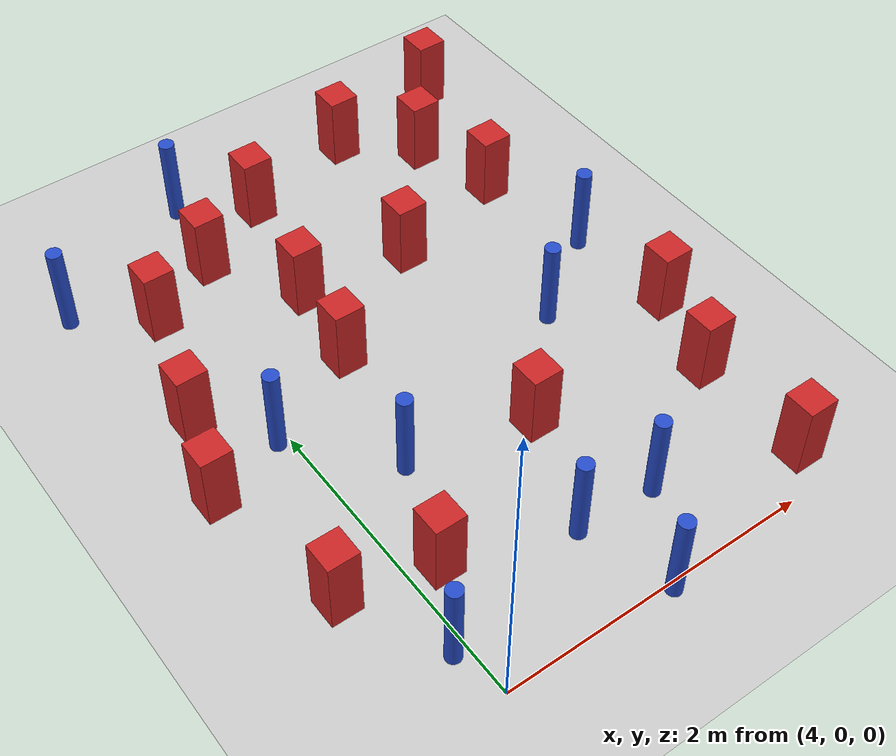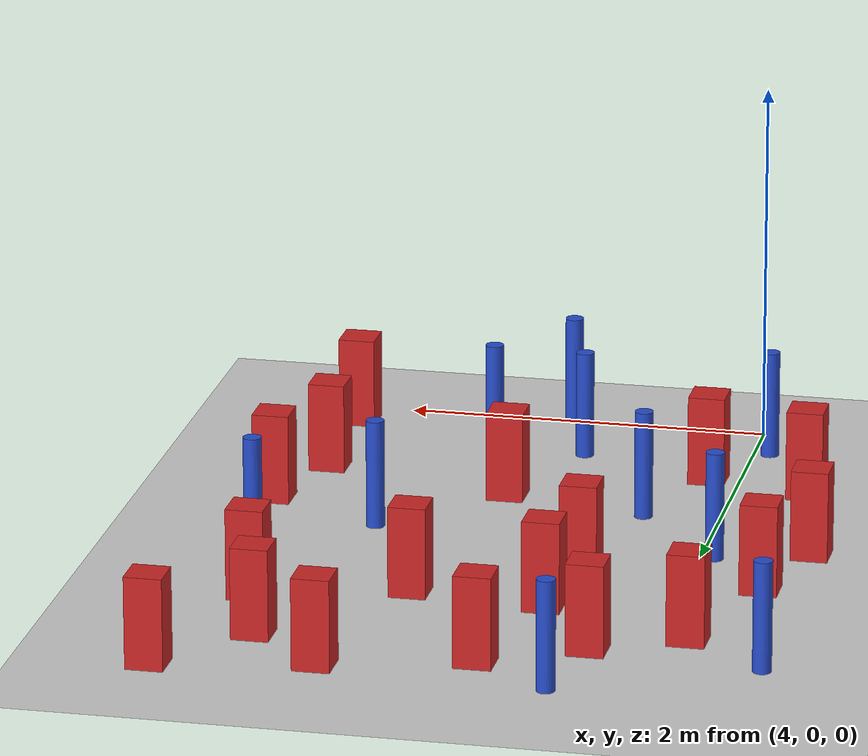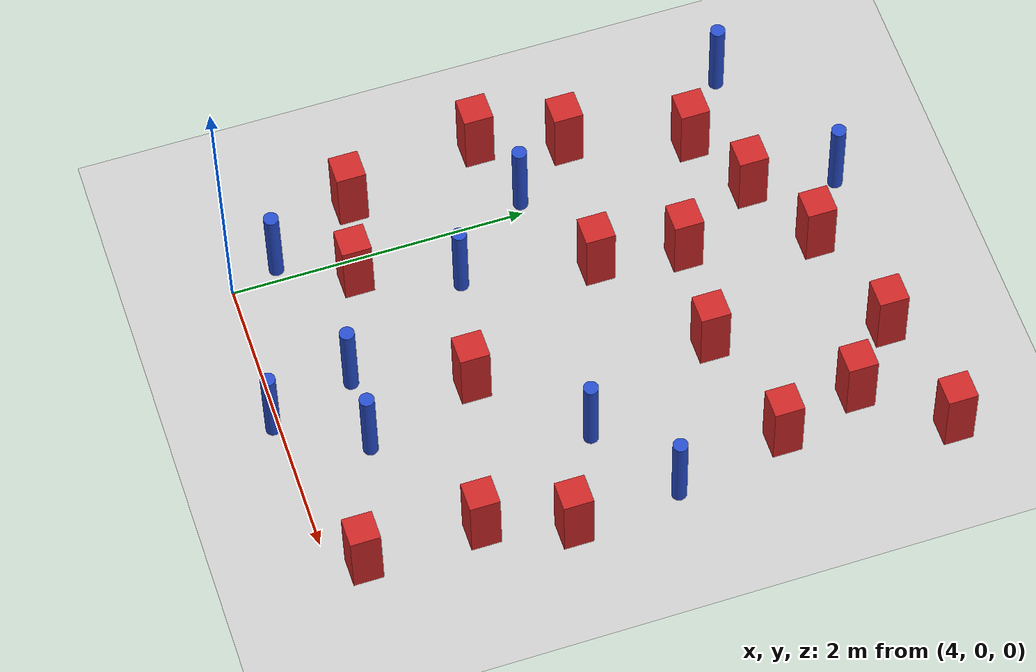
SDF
<sdf version="1.6">
 <world name="default">
  <model name="ground_plane">
   <static>1</static>
   <link name="link">
    <collision name="collision">
     <geometry><plane><normal>0 0 1</normal><size>100 100</size></plane></geometry>
     <surface><friction><ode><mu>100</mu><mu2>50</mu2></ode></friction></surface>
    </collision>
    <visual name="visual">
     <cast_shadows>0</cast_shadows>
     <geometry><plane><normal>0 0 1</normal><size>100 100</size></plane></geometry>
     <material>
      <ambient>1.0 1.0 1.0 1.0</ambient>
      <diffuse>0.8 0.8 0.8 1.0</diffuse>
      <specular>0.01 0.01 0.01 1.000000</specular>
     </material>
    </visual>
   </link>
  </model>
  <model name="square_post_obstacle2">
   <static>true</static>
   <pose>3.42907866746 1.85608255959 1.91545236811e-07 -7.35059704564e-06 1.12565212e-07 2.39332434364e-05</pose>
   <link name="link">
    <pose>0 0 0.25 0 -0 0</pose>
    <inertial>
     <mass>100</mass>
     <inertia>
      <ixx>0.166667</ixx>
      <ixy>0</ixy>
      <ixz>0</ixz>
      <iyy>0.166667</iyy>
      <iyz>0</iyz>
      <izz>0.166667</izz>
     </inertia>
    </inertial>
    <collision name="collision"><geometry><box><size>.2 .2 .5</size></box></geometry></collision>
    <visual name="visual">
     <geometry><box><size>.2 .2 .5</size></box></geometry>
     <material>
      <script><name>Gazebo/Red</name><uri>file://media/materials/scripts/gazebo.material</uri></script>
     </material>
    </visual>
   </link>
  </model>
  <model name="square_post_obstacle26">
   <static>true</static>
   <pose>6.25587977387 0.218752010429 1.91545236811e-07 -7.35059704564e-06 1.12565212e-07 2.39332434364e-05</pose>
   <link name="link">
    <pose>0 0 0.25 0 -0 0</pose>
    <inertial>
     <mass>100</mass>
     <inertia>
      <ixx>0.166667</ixx>
      <ixy>0</ixy>
      <ixz>0</ixz>
      <iyy>0.166667</iyy>
      <iyz>0</iyz>
      <izz>0.166667</izz>
     </inertia>
    </inertial>
    <collision name="collision"><geometry><box><size>.2 .2 .5</size></box></geometry></collision>
    <visual name="visual">
     <geometry><box><size>.2 .2 .5</size></box></geometry>
     <material>
      <script><name>Gazebo/Red</name><uri>file://media/materials/scripts/gazebo.material</uri></script>
     </material>
    </visual>
   </link>
  </model>
  <model name="square_post_obstacle27">
   <static>true</static>
   <pose>4.17155937596 0.791975838334 1.91545236811e-07 -7.35059704564e-06 1.12565212e-07 2.39332434364e-05</pose>
   <link name="link">
    <pose>0 0 0.25 0 -0 0</pose>
    <inertial>
     <mass>100</mass>
     <inertia>
      <ixx>0.166667</ixx>
      <ixy>0</ixy>
      <ixz>0</ixz>
      <iyy>0.166667</iyy>
      <iyz>0</iyz>
      <izz>0.166667</izz>
     </inertia>
    </inertial>
    <collision name="collision"><geometry><box><size>.2 .2 .5</size></box></geometry></collision>
    <visual name="visual">
     <geometry><box><size>.2 .2 .5</size></box></geometry>
     <material>
      <script><name>Gazebo/Red</name><uri>file://media/materials/scripts/gazebo.material</uri></script>
     </material>
    </visual>
   </link>
  </model>
  <model name="square_post_obstacle34">
   <static>true</static>
   <pose>3.60558968587 2.42284422886 1.91545236811e-07 -7.35059704564e-06 1.12565212e-07 2.39332434364e-05</pose>
   <link name="link">
    <pose>0 0 0.25 0 -0 0</pose>
    <inertial>
     <mass>100</mass>
     <inertia>
      <ixx>0.166667</ixx>
      <ixy>0</ixy>
      <ixz>0</ixz>
      <iyy>0.166667</iyy>
      <iyz>0</iyz>
      <izz>0.166667</izz>
     </inertia>
    </inertial>
    <collision name="collision"><geometry><box><size>.2 .2 .5</size></box></geometry></collision>
    <visual name="visual">
     <geometry><box><size>.2 .2 .5</size></box></geometry>
     <material>
      <script><name>Gazebo/Red</name><uri>file://media/materials/scripts/gazebo.material</uri></script>
     </material>
    </visual>
   </link>
  </model>
  <model name="square_post_obstacle47">
   <static>true</static>
   <pose>5.63885271513 3.95635815245 1.91545236811e-07 -7.35059704564e-06 1.12565212e-07 2.39332434364e-05</pose>
   <link name="link">
    <pose>0 0 0.25 0 -0 0</pose>
    <inertial>
     <mass>100</mass>
     <inertia>
      <ixx>0.166667</ixx>
      <ixy>0</ixy>
      <ixz>0</ixz>
      <iyy>0.166667</iyy>
      <iyz>0</iyz>
      <izz>0.166667</izz>
     </inertia>
    </inertial>
    <collision name="collision"><geometry><box><size>.2 .2 .5</size></box></geometry></collision>
    <visual name="visual">
     <geometry><box><size>.2 .2 .5</size></box></geometry>
     <material>
      <script><name>Gazebo/Red</name><uri>file://media/materials/scripts/gazebo.material</uri></script>
     </material>
    </visual>
   </link>
  </model>
  <model name="pole_obstacle52">
   <static>true</static>
   <pose>4.42322133173 4.05325340769 7.38925637345e-09 -8.47170692796e-08 1.24976764786e-08 -1.74513093032e-07</pose>
   <link name="link">
    <pose>0 0 0.3 0 -0 0</pose>
    <inertial>
     <mass>1</mass>
     <inertia><ixx>0.145833</ixx><ixy>0</ixy><ixz>0</ixz><iyy>0.145833</iyy><iyz>0</iyz><izz>0.125</izz></inertia>
    </inertial>
    <collision name="collision">
     <geometry><cylinder><radius>0.05</radius><length>.6</length></cylinder></geometry>
    </collision>
    <visual name="visual">
     <geometry><cylinder><radius>0.05</radius><length>.6</length></cylinder></geometry>
     <material>
      <script><name>Gazebo/Blue</name><uri>file://media/materials/scripts/gazebo.material</uri></script>
     </material>
    </visual>
   </link>
  </model>
  <model name="square_post_obstacle59">
   <static>true</static>
   <pose>5.39067442981 2.82921084237 1.91545236811e-07 -7.35059704564e-06 1.12565212e-07 2.39332434364e-05</pose>
   <link name="link">
    <pose>0 0 0.25 0 -0 0</pose>
    <inertial>
     <mass>100</mass>
     <inertia>
      <ixx>0.166667</ixx>
      <ixy>0</ixy>
      <ixz>0</ixz>
      <iyy>0.166667</iyy>
      <iyz>0</iyz>
      <izz>0.166667</izz>
     </inertia>
    </inertial>
    <collision name="collision"><geometry><box><size>.2 .2 .5</size></box></geometry></collision>
    <visual name="visual">
     <geometry><box><size>.2 .2 .5</size></box></geometry>
     <material>
      <script><name>Gazebo/Red</name><uri>file://media/materials/scripts/gazebo.material</uri></script>
     </material>
    </visual>
   </link>
  </model>
  <model name="square_post_obstacle64">
   <static>true</static>
   <pose>5.1945055967 1.27014534133 1.91545236811e-07 -7.35059704564e-06 1.12565212e-07 2.39332434364e-05</pose>
   <link name="link">
    <pose>0 0 0.25 0 -0 0</pose>
    <inertial>
     <mass>100</mass>
     <inertia>
      <ixx>0.166667</ixx>
      <ixy>0</ixy>
      <ixz>0</ixz>
      <iyy>0.166667</iyy>
      <iyz>0</iyz>
      <izz>0.166667</izz>
     </inertia>
    </inertial>
    <collision name="collision"><geometry><box><size>.2 .2 .5</size></box></geometry></collision>
    <visual name="visual">
     <geometry><box><size>.2 .2 .5</size></box></geometry>
     <material>
      <script><name>Gazebo/Red</name><uri>file://media/materials/scripts/gazebo.material</uri></script>
     </material>
    </visual>
   </link>
  </model>
  <model name="pole_obstacle69">
   <static>true</static>
   <pose>4.9115432792 0.536855201378 7.38925637345e-09 -8.471706928e-08 1.24976765164e-08 -1.74513093012e-07</pose>
   <link name="link">
    <pose>0 0 0.3 0 -0 0</pose>
    <inertial>
     <mass>1</mass>
     <inertia><ixx>0.145833</ixx><ixy>0</ixy><ixz>0</ixz><iyy>0.145833</iyy><iyz>0</iyz><izz>0.125</izz></inertia>
    </inertial>
    <collision name="collision">
     <geometry><cylinder><radius>0.05</radius><length>.6</length></cylinder></geometry>
    </collision>
    <visual name="visual">
     <geometry><cylinder><radius>0.05</radius><length>.6</length></cylinder></geometry>
     <material>
      <script><name>Gazebo/Blue</name><uri>file://media/materials/scripts/gazebo.material</uri></script>
     </material>
    </visual>
   </link>
  </model>
  <model name="pole_obstacle83">
   <static>true</static>
   <pose>5.79301298365 1.88010205711 7.38925637345e-09 -8.471706928e-08 1.24976765134e-08 -1.74513093015e-07</pose>
   <link name="link">
    <pose>0 0 0.3 0 -0 0</pose>
    <inertial>
     <mass>1</mass>
     <inertia><ixx>0.145833</ixx><ixy>0</ixy><ixz>0</ixz><iyy>0.145833</iyy><iyz>0</iyz><izz>0.125</izz></inertia>
    </inertial>
    <collision name="collision">
     <geometry><cylinder><radius>0.05</radius><length>.6</length></cylinder></geometry>
    </collision>
    <visual name="visual">
     <geometry><cylinder><radius>0.05</radius><length>.6</length></cylinder></geometry>
     <material>
      <script><name>Gazebo/Blue</name><uri>file://media/materials/scripts/gazebo.material</uri></script>
     </material>
    </visual>
   </link>
  </model>
  <model name="square_post_obstacle81">
   <static>true</static>
   <pose>4.32251659987 3.46913993744 1.91545236811e-07 -7.35059704564e-06 1.12565212e-07 2.39332434364e-05</pose>
   <link name="link">
    <pose>0 0 0.25 0 -0 0</pose>
    <inertial>
     <mass>100</mass>
     <inertia>
      <ixx>0.166667</ixx>
      <ixy>0</ixy>
      <ixz>0</ixz>
      <iyy>0.166667</iyy>
      <iyz>0</iyz>
      <izz>0.166667</izz>
     </inertia>
    </inertial>
    <collision name="collision"><geometry><box><size>.2 .2 .5</size></box></geometry></collision>
    <visual name="visual">
     <geometry><box><size>.2 .2 .5</size></box></geometry>
     <material>
      <script><name>Gazebo/Red</name><uri>file://media/materials/scripts/gazebo.material</uri></script>
     </material>
    </visual>
   </link>
  </model>
  <model name="square_post_obstacle85">
   <static>true</static>
   <pose>4.84624368069 3.7546573629 1.91545236811e-07 -7.35059704564e-06 1.12565212e-07 2.39332434364e-05</pose>
   <link name="link">
    <pose>0 0 0.25 0 -0 0</pose>
    <inertial>
     <mass>100</mass>
     <inertia>
      <ixx>0.166667</ixx>
      <ixy>0</ixy>
      <ixz>0</ixz>
      <iyy>0.166667</iyy>
      <iyz>0</iyz>
      <izz>0.166667</izz>
     </inertia>
    </inertial>
    <collision name="collision"><geometry><box><size>.2 .2 .5</size></box></geometry></collision>
    <visual name="visual">
     <geometry><box><size>.2 .2 .5</size></box></geometry>
     <material>
      <script><name>Gazebo/Red</name><uri>file://media/materials/scripts/gazebo.material</uri></script>
     </material>
    </visual>
   </link>
  </model>
  <model name="pole_obstacle100">
   <static>true</static>
   <pose>6.37108561402 2.2789085057 7.38925637345e-09 -8.47170692798e-08 1.24976764937e-08 -1.74513093023e-07</pose>
   <link name="link">
    <pose>0 0 0.3 0 -0 0</pose>
    <inertial>
     <mass>1</mass>
     <inertia><ixx>0.145833</ixx><ixy>0</ixy><ixz>0</ixz><iyy>0.145833</iyy><iyz>0</iyz><izz>0.125</izz></inertia>
    </inertial>
    <collision name="collision">
     <geometry><cylinder><radius>0.05</radius><length>.6</length></cylinder></geometry>
    </collision>
    <visual name="visual">
     <geometry><cylinder><radius>0.05</radius><length>.6</length></cylinder></geometry>
     <material>
      <script><name>Gazebo/Blue</name><uri>file://media/materials/scripts/gazebo.material</uri></script>
     </material>
    </visual>
   </link>
  </model>
  <model name="square_post_obstacle95">
   <static>true</static>
   <pose>6.24750688338 0.999710594308 1.91545236811e-07 -7.35059704564e-06 1.12565212e-07 2.39332434364e-05</pose>
   <link name="link">
    <pose>0 0 0.25 0 -0 0</pose>
    <inertial>
     <mass>100</mass>
     <inertia>
      <ixx>0.166667</ixx>
      <ixy>0</ixy>
      <ixz>0</ixz>
      <iyy>0.166667</iyy>
      <iyz>0</iyz>
      <izz>0.166667</izz>
     </inertia>
    </inertial>
    <collision name="collision"><geometry><box><size>.2 .2 .5</size></box></geometry></collision>
    <visual name="visual">
     <geometry><box><size>.2 .2 .5</size></box></geometry>
     <material>
      <script><name>Gazebo/Red</name><uri>file://media/materials/scripts/gazebo.material</uri></script>
     </material>
    </visual>
   </link>
  </model>
  <model name="square_post_obstacle97">
   <static>true</static>
   <pose>6.47033900189 4.10918136226 1.91545236811e-07 -7.35059704564e-06 1.12565212e-07 2.39332434364e-05</pose>
   <link name="link">
    <pose>0 0 0.25 0 -0 0</pose>
    <inertial>
     <mass>100</mass>
     <inertia>
      <ixx>0.166667</ixx>
      <ixy>0</ixy>
      <ixz>0</ixz>
      <iyy>0.166667</iyy>
      <iyz>0</iyz>
      <izz>0.166667</izz>
     </inertia>
    </inertial>
    <collision name="collision"><geometry><box><size>.2 .2 .5</size></box></geometry></collision>
    <visual name="visual">
     <geometry><box><size>.2 .2 .5</size></box></geometry>
     <material>
      <script><name>Gazebo/Red</name><uri>file://media/materials/scripts/gazebo.material</uri></script>
     </material>
    </visual>
   </link>
  </model>
  <model name="square_post_obstacle102">
   <static>true</static>
   <pose>3.60766624876 0.924212082543 1.91545236811e-07 -7.35059704564e-06 1.12565212e-07 2.39332434364e-05</pose>
   <link name="link">
    <pose>0 0 0.25 0 -0 0</pose>
    <inertial>
     <mass>100</mass>
     <inertia>
      <ixx>0.166667</ixx>
      <ixy>0</ixy>
      <ixz>0</ixz>
      <iyy>0.166667</iyy>
      <iyz>0</iyz>
      <izz>0.166667</izz>
     </inertia>
    </inertial>
    <collision name="collision"><geometry><box><size>.2 .2 .5</size></box></geometry></collision>
    <visual name="visual">
     <geometry><box><size>.2 .2 .5</size></box></geometry>
     <material>
      <script><name>Gazebo/Red</name><uri>file://media/materials/scripts/gazebo.material</uri></script>
     </material>
    </visual>
   </link>
  </model>
  <model name="pole_obstacle122">
   <static>true</static>
   <pose>3.92432425905 2.00981238125 7.38925637345e-09 -8.47170692799e-08 1.24976765087e-08 -1.74513093015e-07</pose>
   <link name="link">
    <pose>0 0 0.3 0 -0 0</pose>
    <inertial>
     <mass>1</mass>
     <inertia><ixx>0.145833</ixx><ixy>0</ixy><ixz>0</ixz><iyy>0.145833</iyy><iyz>0</iyz><izz>0.125</izz></inertia>
    </inertial>
    <collision name="collision">
     <geometry><cylinder><radius>0.05</radius><length>.6</length></cylinder></geometry>
    </collision>
    <visual name="visual">
     <geometry><cylinder><radius>0.05</radius><length>.6</length></cylinder></geometry>
     <material>
      <script><name>Gazebo/Blue</name><uri>file://media/materials/scripts/gazebo.material</uri></script>
     </material>
    </visual>
   </link>
  </model>
  <model name="pole_obstacle124">
   <static>true</static>
   <pose>5.42598654304 0.512718496909 7.38925637345e-09 -8.471706928e-08 1.24976765164e-08 -1.74513093012e-07</pose>
   <link name="link">
    <pose>0 0 0.3 0 -0 0</pose>
    <inertial>
     <mass>1</mass>
     <inertia><ixx>0.145833</ixx><ixy>0</ixy><ixz>0</ixz><iyy>0.145833</iyy><iyz>0</iyz><izz>0.125</izz></inertia>
    </inertial>
    <collision name="collision">
     <geometry><cylinder><radius>0.05</radius><length>.6</length></cylinder></geometry>
    </collision>
    <visual name="visual">
     <geometry><cylinder><radius>0.05</radius><length>.6</length></cylinder></geometry>
     <material>
      <script><name>Gazebo/Blue</name><uri>file://media/materials/scripts/gazebo.material</uri></script>
     </material>
    </visual>
   </link>
  </model>
  <model name="square_post_obstacle123">
   <static>true</static>
   <pose>6.4278260094 1.55646025615 1.91545236811e-07 -7.35059704564e-06 1.12565212e-07 2.39332434364e-05</pose>
   <link name="link">
    <pose>0 0 0.25 0 -0 0</pose>
    <inertial>
     <mass>100</mass>
     <inertia>
      <ixx>0.166667</ixx>
      <ixy>0</ixy>
      <ixz>0</ixz>
      <iyy>0.166667</iyy>
      <iyz>0</iyz>
      <izz>0.166667</izz>
     </inertia>
    </inertial>
    <collision name="collision"><geometry><box><size>.2 .2 .5</size></box></geometry></collision>
    <visual name="visual">
     <geometry><box><size>.2 .2 .5</size></box></geometry>
     <material>
      <script><name>Gazebo/Red</name><uri>file://media/materials/scripts/gazebo.material</uri></script>
     </material>
    </visual>
   </link>
  </model>
  <model name="square_post_obstacle128">
   <static>true</static>
   <pose>6.04632629917 3.5933880203 1.91545236811e-07 -7.35059704564e-06 1.12565212e-07 2.39332434364e-05</pose>
   <link name="link">
    <pose>0 0 0.25 0 -0 0</pose>
    <inertial>
     <mass>100</mass>
     <inertia>
      <ixx>0.166667</ixx>
      <ixy>0</ixy>
      <ixz>0</ixz>
      <iyy>0.166667</iyy>
      <iyz>0</iyz>
      <izz>0.166667</izz>
     </inertia>
    </inertial>
    <collision name="collision"><geometry><box><size>.2 .2 .5</size></box></geometry></collision>
    <visual name="visual">
     <geometry><box><size>.2 .2 .5</size></box></geometry>
     <material>
      <script><name>Gazebo/Red</name><uri>file://media/materials/scripts/gazebo.material</uri></script>
     </material>
    </visual>
   </link>
  </model>
  <model name="pole_obstacle149">
   <static>true</static>
   <pose>4.41274179749 1.44270590316 7.38925637345e-09 -8.471706928e-08 1.24976765134e-08 -1.74513093015e-07</pose>
   <link name="link">
    <pose>0 0 0.3 0 -0 0</pose>
    <inertial>
     <mass>1</mass>
     <inertia><ixx>0.145833</ixx><ixy>0</ixy><ixz>0</ixz><iyy>0.145833</iyy><iyz>0</iyz><izz>0.125</izz></inertia>
    </inertial>
    <collision name="collision">
     <geometry><cylinder><radius>0.05</radius><length>.6</length></cylinder></geometry>
    </collision>
    <visual name="visual">
     <geometry><cylinder><radius>0.05</radius><length>.6</length></cylinder></geometry>
     <material>
      <script><name>Gazebo/Blue</name><uri>file://media/materials/scripts/gazebo.material</uri></script>
     </material>
    </visual>
   </link>
  </model>
  <model name="pole_obstacle150">
   <static>true</static>
   <pose>3.40337420348 3.56894449913 7.38925637345e-09 -8.47170692798e-08 1.24976764939e-08 -1.74513093025e-07</pose>
   <link name="link">
    <pose>0 0 0.3 0 -0 0</pose>
    <inertial>
     <mass>1</mass>
     <inertia><ixx>0.145833</ixx><ixy>0</ixy><ixz>0</ixz><iyy>0.145833</iyy><iyz>0</iyz><izz>0.125</izz></inertia>
    </inertial>
    <collision name="collision">
     <geometry><cylinder><radius>0.05</radius><length>.6</length></cylinder></geometry>
    </collision>
    <visual name="visual">
     <geometry><cylinder><radius>0.05</radius><length>.6</length></cylinder></geometry>
     <material>
      <script><name>Gazebo/Blue</name><uri>file://media/materials/scripts/gazebo.material</uri></script>
     </material>
    </visual>
   </link>
  </model>
  <model name="square_post_obstacle144">
   <static>true</static>
   <pose>4.58253116796 2.31968595682 1.91545236811e-07 -7.35059704564e-06 1.12565212e-07 2.39332434364e-05</pose>
   <link name="link">
    <pose>0 0 0.25 0 -0 0</pose>
    <inertial>
     <mass>100</mass>
     <inertia>
      <ixx>0.166667</ixx>
      <ixy>0</ixy>
      <ixz>0</ixz>
      <iyy>0.166667</iyy>
      <iyz>0</iyz>
      <izz>0.166667</izz>
     </inertia>
    </inertial>
    <collision name="collision"><geometry><box><size>.2 .2 .5</size></box></geometry></collision>
    <visual name="visual">
     <geometry><box><size>.2 .2 .5</size></box></geometry>
     <material>
      <script><name>Gazebo/Red</name><uri>file://media/materials/scripts/gazebo.material</uri></script>
     </material>
    </visual>
   </link>
  </model>
  <model name="pole_obstacle169">
   <static>true</static>
   <pose>5.08421569203 -0.0379781768218 7.38925637345e-09 -8.47170692799e-08 1.24976765036e-08 -1.7451309302e-07</pose>
   <link name="link">
    <pose>0 0 0.3 0 -0 0</pose>
    <inertial>
     <mass>1</mass>
     <inertia><ixx>0.145833</ixx><ixy>0</ixy><ixz>0</ixz><iyy>0.145833</iyy><iyz>0</iyz><izz>0.125</izz></inertia>
    </inertial>
    <collision name="collision">
     <geometry><cylinder><radius>0.05</radius><length>.6</length></cylinder></geometry>
    </collision>
    <visual name="visual">
     <geometry><cylinder><radius>0.05</radius><length>.6</length></cylinder></geometry>
     <material>
      <script><name>Gazebo/Blue</name><uri>file://media/materials/scripts/gazebo.material</uri></script>
     </material>
    </visual>
   </link>
  </model>
  <model name="pole_obstacle174">
   <static>true</static>
   <pose>3.9114574282 0.324010518853 7.38925637345e-09 -8.471706928e-08 1.24976765172e-08 -1.74513093013e-07</pose>
   <link name="link">
    <pose>0 0 0.3 0 -0 0</pose>
    <inertial>
     <mass>1</mass>
     <inertia><ixx>0.145833</ixx><ixy>0</ixy><ixz>0</ixz><iyy>0.145833</iyy><iyz>0</iyz><izz>0.125</izz></inertia>
    </inertial>
    <collision name="collision">
     <geometry><cylinder><radius>0.05</radius><length>.6</length></cylinder></geometry>
    </collision>
    <visual name="visual">
     <geometry><cylinder><radius>0.05</radius><length>.6</length></cylinder></geometry>
     <material>
      <script><name>Gazebo/Blue</name><uri>file://media/materials/scripts/gazebo.material</uri></script>
     </material>
    </visual>
   </link>
  </model>
  <model name="square_post_obstacle184">
   <static>true</static>
   <pose>4.66550667762 2.89942737747 1.91545236811e-07 -7.35059704564e-06 1.12565212e-07 2.39332434364e-05</pose>
   <link name="link">
    <pose>0 0 0.25 0 -0 0</pose>
    <inertial>
     <mass>100</mass>
     <inertia>
      <ixx>0.166667</ixx>
      <ixy>0</ixy>
      <ixz>0</ixz>
      <iyy>0.166667</iyy>
      <iyz>0</iyz>
      <izz>0.166667</izz>
     </inertia>
    </inertial>
    <collision name="collision"><geometry><box><size>.2 .2 .5</size></box></geometry></collision>
    <visual name="visual">
     <geometry><box><size>.2 .2 .5</size></box></geometry>
     <material>
      <script><name>Gazebo/Red</name><uri>file://media/materials/scripts/gazebo.material</uri></script>
     </material>
    </visual>
   </link>
  </model>
  <model name="square_post_obstacle188">
   <static>true</static>
   <pose>6.20868573299 3.03627233169 1.91545236811e-07 -7.35059704564e-06 1.12565212e-07 2.39332434364e-05</pose>
   <link name="link">
    <pose>0 0 0.25 0 -0 0</pose>
    <inertial>
     <mass>100</mass>
     <inertia>
      <ixx>0.166667</ixx>
      <ixy>0</ixy>
      <ixz>0</ixz>
      <iyy>0.166667</iyy>
      <iyz>0</iyz>
      <izz>0.166667</izz>
     </inertia>
    </inertial>
    <collision name="collision"><geometry><box><size>.2 .2 .5</size></box></geometry></collision>
    <visual name="visual">
     <geometry><box><size>.2 .2 .5</size></box></geometry>
     <material>
      <script><name>Gazebo/Red</name><uri>file://media/materials/scripts/gazebo.material</uri></script>
     </material>
    </visual>
   </link>
  </model>
  <model name="square_post_obstacle205">
   <static>true</static>
   <pose>3.84429981889 3.22794801307 1.91545236811e-07 -7.35059704564e-06 1.12565212e-07 2.39332434364e-05</pose>
   <link name="link">
    <pose>0 0 0.25 0 -0 0</pose>
    <inertial>
     <mass>100</mass>
     <inertia>
      <ixx>0.166667</ixx>
      <ixy>0</ixy>
      <ixz>0</ixz>
      <iyy>0.166667</iyy>
      <iyz>0</iyz>
      <izz>0.166667</izz>
     </inertia>
    </inertial>
    <collision name="collision"><geometry><box><size>.2 .2 .5</size></box></geometry></collision>
    <visual name="visual">
     <geometry><box><size>.2 .2 .5</size></box></geometry>
     <material>
      <script><name>Gazebo/Red</name><uri>file://media/materials/scripts/gazebo.material</uri></script>
     </material>
    </visual>
   </link>
  </model>
 </world>
</sdf>
